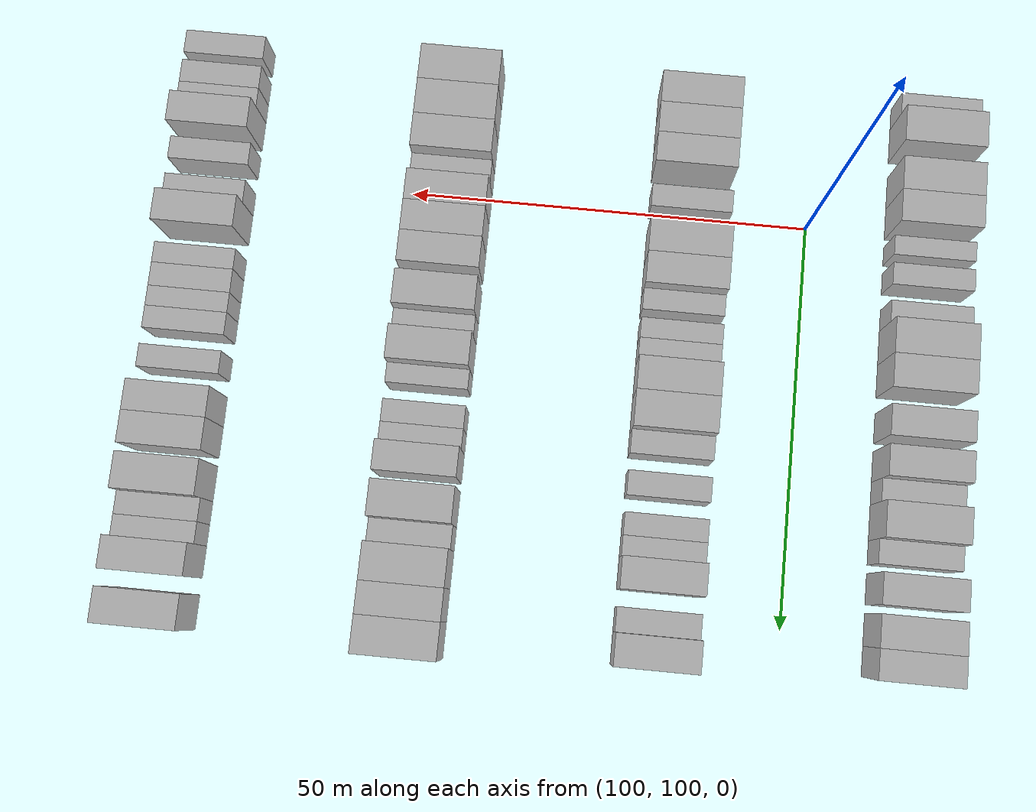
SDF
<sdf version="1.6">
 <world name="default">
  <model name="building_586">
   <static>1</static>
   <pose>85.0000 84.3068 0 0.000000 0.000000 0.000000</pose>
   <link name="link">
    <pose>0 0 3.00 0 0 0</pose>
    <collision name="collision"><geometry><box><size>10.0000 2.7401 6.0000</size></box></geometry></collision>
    <visual name="visual">
     <cast_shadows>0</cast_shadows>
     <geometry><box><size>10.0000 2.7401 6.0000</size></box></geometry>
     <material>
      <script>
       <uri>model://HANNAS_wall/materials/scripts</uri>
       <uri>model://HANNAS_wall/materials/textures</uri>
       <name>vrc/HANNAS_wall</name>
      </script>
     </material>
    </visual>
   </link>
  </model>
  <model name="building_587">
   <static>1</static>
   <pose>85.0000 87.9231 0 0.000000 0.000000 0.000000</pose>
   <link name="link">
    <pose>0 0 4.50 0 0 0</pose>
    <collision name="collision"><geometry><box><size>10.0000 4.4925 9.0000</size></box></geometry></collision>
    <visual name="visual">
     <cast_shadows>0</cast_shadows>
     <geometry><box><size>10.0000 4.4925 9.0000</size></box></geometry>
     <material>
      <script>
       <uri>model://HANNAS_wall/materials/scripts</uri>
       <uri>model://HANNAS_wall/materials/textures</uri>
       <name>vrc/HANNAS_wall</name>
      </script>
     </material>
    </visual>
   </link>
  </model>
  <model name="building_588">
   <static>1</static>
   <pose>85.0000 94.2561 0 0.000000 0.000000 0.000000</pose>
   <link name="link">
    <pose>0 0 4.50 0 0 0</pose>
    <collision name="collision"><geometry><box><size>10.0000 4.1736 9.0000</size></box></geometry></collision>
    <visual name="visual">
     <cast_shadows>0</cast_shadows>
     <geometry><box><size>10.0000 4.1736 9.0000</size></box></geometry>
     <material>
      <script>
       <uri>model://HANNAS_wall/materials/scripts</uri>
       <uri>model://HANNAS_wall/materials/textures</uri>
       <name>vrc/HANNAS_wall</name>
      </script>
     </material>
    </visual>
   </link>
  </model>
  <model name="building_589">
   <static>1</static>
   <pose>85.0000 98.3494 0 0.000000 0.000000 0.000000</pose>
   <link name="link">
    <pose>0 0 4.50 0 0 0</pose>
    <collision name="collision"><geometry><box><size>10.0000 4.0129 9.0000</size></box></geometry></collision>
    <visual name="visual">
     <cast_shadows>0</cast_shadows>
     <geometry><box><size>10.0000 4.0129 9.0000</size></box></geometry>
     <material>
      <script>
       <uri>model://HANNAS_wall/materials/scripts</uri>
       <uri>model://HANNAS_wall/materials/textures</uri>
       <name>vrc/HANNAS_wall</name>
      </script>
     </material>
    </visual>
   </link>
  </model>
  <model name="building_590">
   <static>1</static>
   <pose>85.0000 102.5687 0 0.000000 0.000000 0.000000</pose>
   <link name="link">
    <pose>0 0 3.00 0 0 0</pose>
    <collision name="collision"><geometry><box><size>10.0000 2.4257 6.0000</size></box></geometry></collision>
    <visual name="visual">
     <cast_shadows>0</cast_shadows>
     <geometry><box><size>10.0000 2.4257 6.0000</size></box></geometry>
     <material>
      <script>
       <uri>model://HANNAS_wall/materials/scripts</uri>
       <uri>model://HANNAS_wall/materials/textures</uri>
       <name>vrc/HANNAS_wall</name>
      </script>
     </material>
    </visual>
   </link>
  </model>
  <model name="building_591">
   <static>1</static>
   <pose>85.0000 106.1508 0 0.000000 0.000000 0.000000</pose>
   <link name="link">
    <pose>0 0 3.00 0 0 0</pose>
    <collision name="collision"><geometry><box><size>10.0000 2.7384 6.0000</size></box></geometry></collision>
    <visual name="visual">
     <cast_shadows>0</cast_shadows>
     <geometry><box><size>10.0000 2.7384 6.0000</size></box></geometry>
     <material>
      <script>
       <uri>model://HANNAS_wall/materials/scripts</uri>
       <uri>model://HANNAS_wall/materials/textures</uri>
       <name>vrc/HANNAS_wall</name>
      </script>
     </material>
    </visual>
   </link>
  </model>
  <model name="building_592">
   <static>1</static>
   <pose>85.0000 110.8745 0 0.000000 0.000000 0.000000</pose>
   <link name="link">
    <pose>0 0 3.00 0 0 0</pose>
    <collision name="collision"><geometry><box><size>10.0000 2.7091 6.0000</size></box></geometry></collision>
    <visual name="visual">
     <cast_shadows>0</cast_shadows>
     <geometry><box><size>10.0000 2.7091 6.0000</size></box></geometry>
     <material>
      <script>
       <uri>model://HANNAS_wall/materials/scripts</uri>
       <uri>model://HANNAS_wall/materials/textures</uri>
       <name>vrc/HANNAS_wall</name>
      </script>
     </material>
    </visual>
   </link>
  </model>
  <model name="building_593">
   <static>1</static>
   <pose>85.0000 114.3987 0 0.000000 0.000000 0.000000</pose>
   <link name="link">
    <pose>0 0 4.50 0 0 0</pose>
    <collision name="collision"><geometry><box><size>10.0000 4.3392 9.0000</size></box></geometry></collision>
    <visual name="visual">
     <cast_shadows>0</cast_shadows>
     <geometry><box><size>10.0000 4.3392 9.0000</size></box></geometry>
     <material>
      <script>
       <uri>model://HANNAS_wall/materials/scripts</uri>
       <uri>model://HANNAS_wall/materials/textures</uri>
       <name>vrc/HANNAS_wall</name>
      </script>
     </material>
    </visual>
   </link>
  </model>
  <model name="building_594">
   <static>1</static>
   <pose>85.0000 118.6286 0 0.000000 0.000000 0.000000</pose>
   <link name="link">
    <pose>0 0 4.50 0 0 0</pose>
    <collision name="collision"><geometry><box><size>10.0000 4.1207 9.0000</size></box></geometry></collision>
    <visual name="visual">
     <cast_shadows>0</cast_shadows>
     <geometry><box><size>10.0000 4.1207 9.0000</size></box></geometry>
     <material>
      <script>
       <uri>model://HANNAS_wall/materials/scripts</uri>
       <uri>model://HANNAS_wall/materials/textures</uri>
       <name>vrc/HANNAS_wall</name>
      </script>
     </material>
    </visual>
   </link>
  </model>
  <model name="building_595">
   <static>1</static>
   <pose>85.0000 124.5552 0 0.000000 0.000000 0.000000</pose>
   <link name="link">
    <pose>0 0 4.50 0 0 0</pose>
    <collision name="collision"><geometry><box><size>10.0000 3.7326 9.0000</size></box></geometry></collision>
    <visual name="visual">
     <cast_shadows>0</cast_shadows>
     <geometry><box><size>10.0000 3.7326 9.0000</size></box></geometry>
     <material>
      <script>
       <uri>model://HANNAS_wall/materials/scripts</uri>
       <uri>model://HANNAS_wall/materials/textures</uri>
       <name>vrc/HANNAS_wall</name>
      </script>
     </material>
    </visual>
   </link>
  </model>
  <model name="building_596">
   <static>1</static>
   <pose>85.0000 129.3029 0 0.000000 0.000000 0.000000</pose>
   <link name="link">
    <pose>0 0 4.50 0 0 0</pose>
    <collision name="collision"><geometry><box><size>10.0000 3.7627 9.0000</size></box></geometry></collision>
    <visual name="visual">
     <cast_shadows>0</cast_shadows>
     <geometry><box><size>10.0000 3.7627 9.0000</size></box></geometry>
     <material>
      <script>
       <uri>model://HANNAS_wall/materials/scripts</uri>
       <uri>model://HANNAS_wall/materials/textures</uri>
       <name>vrc/HANNAS_wall</name>
      </script>
     </material>
    </visual>
   </link>
  </model>
  <model name="building_597">
   <static>1</static>
   <pose>85.0000 132.5832 0 0.000000 0.000000 0.000000</pose>
   <link name="link">
    <pose>0 0 3.00 0 0 0</pose>
    <collision name="collision"><geometry><box><size>10.0000 2.7979 6.0000</size></box></geometry></collision>
    <visual name="visual">
     <cast_shadows>0</cast_shadows>
     <geometry><box><size>10.0000 2.7979 6.0000</size></box></geometry>
     <material>
      <script>
       <uri>model://HANNAS_wall/materials/scripts</uri>
       <uri>model://HANNAS_wall/materials/textures</uri>
       <name>vrc/HANNAS_wall</name>
      </script>
     </material>
    </visual>
   </link>
  </model>
  <model name="building_598">
   <static>1</static>
   <pose>85.0000 136.1580 0 0.000000 0.000000 0.000000</pose>
   <link name="link">
    <pose>0 0 4.50 0 0 0</pose>
    <collision name="collision"><geometry><box><size>10.0000 4.3518 9.0000</size></box></geometry></collision>
    <visual name="visual">
     <cast_shadows>0</cast_shadows>
     <geometry><box><size>10.0000 4.3518 9.0000</size></box></geometry>
     <material>
      <script>
       <uri>model://HANNAS_wall/materials/scripts</uri>
       <uri>model://HANNAS_wall/materials/textures</uri>
       <name>vrc/HANNAS_wall</name>
      </script>
     </material>
    </visual>
   </link>
  </model>
  <model name="building_599">
   <static>1</static>
   <pose>85.0000 139.8066 0 0.000000 0.000000 0.000000</pose>
   <link name="link">
    <pose>0 0 3.00 0 0 0</pose>
    <collision name="collision"><geometry><box><size>10.0000 2.9453 6.0000</size></box></geometry></collision>
    <visual name="visual">
     <cast_shadows>0</cast_shadows>
     <geometry><box><size>10.0000 2.9453 6.0000</size></box></geometry>
     <material>
      <script>
       <uri>model://HANNAS_wall/materials/scripts</uri>
       <uri>model://HANNAS_wall/materials/textures</uri>
       <name>vrc/HANNAS_wall</name>
      </script>
     </material>
    </visual>
   </link>
  </model>
  <model name="building_600">
   <static>1</static>
   <pose>85.0000 144.1525 0 0.000000 0.000000 0.000000</pose>
   <link name="link">
    <pose>0 0 4.50 0 0 0</pose>
    <collision name="collision"><geometry><box><size>10.0000 3.7465 9.0000</size></box></geometry></collision>
    <visual name="visual">
     <cast_shadows>0</cast_shadows>
     <geometry><box><size>10.0000 3.7465 9.0000</size></box></geometry>
     <material>
      <script>
       <uri>model://HANNAS_wall/materials/scripts</uri>
       <uri>model://HANNAS_wall/materials/textures</uri>
       <name>vrc/HANNAS_wall</name>
      </script>
     </material>
    </visual>
   </link>
  </model>
  <model name="building_601">
   <static>1</static>
   <pose>85.0000 148.9699 0 0.000000 0.000000 0.000000</pose>
   <link name="link">
    <pose>0 0 4.50 0 0 0</pose>
    <collision name="collision"><geometry><box><size>10.0000 3.8882 9.0000</size></box></geometry></collision>
    <visual name="visual">
     <cast_shadows>0</cast_shadows>
     <geometry><box><size>10.0000 3.8882 9.0000</size></box></geometry>
     <material>
      <script>
       <uri>model://HANNAS_wall/materials/scripts</uri>
       <uri>model://HANNAS_wall/materials/textures</uri>
       <name>vrc/HANNAS_wall</name>
      </script>
     </material>
    </visual>
   </link>
  </model>
  <model name="building_602">
   <static>1</static>
   <pose>85.0000 152.7186 0 0.000000 0.000000 0.000000</pose>
   <link name="link">
    <pose>0 0 4.50 0 0 0</pose>
    <collision name="collision"><geometry><box><size>10.0000 3.6094 9.0000</size></box></geometry></collision>
    <visual name="visual">
     <cast_shadows>0</cast_shadows>
     <geometry><box><size>10.0000 3.6094 9.0000</size></box></geometry>
     <material>
      <script>
       <uri>model://HANNAS_wall/materials/scripts</uri>
       <uri>model://HANNAS_wall/materials/textures</uri>
       <name>vrc/HANNAS_wall</name>
      </script>
     </material>
    </visual>
   </link>
  </model>
  <model name="building_821">
   <static>1</static>
   <pose>115.0000 86.0064 0 0.000000 0.000000 0.000000</pose>
   <link name="link">
    <pose>0 0 4.50 0 0 0</pose>
    <collision name="collision"><geometry><box><size>10.0000 4.0059 9.0000</size></box></geometry></collision>
    <visual name="visual">
     <cast_shadows>0</cast_shadows>
     <geometry><box><size>10.0000 4.0059 9.0000</size></box></geometry>
     <material>
      <script>
       <uri>model://HANNAS_wall/materials/scripts</uri>
       <uri>model://HANNAS_wall/materials/textures</uri>
       <name>vrc/HANNAS_wall</name>
      </script>
     </material>
    </visual>
   </link>
  </model>
  <model name="building_822">
   <static>1</static>
   <pose>115.0000 89.9479 0 0.000000 0.000000 0.000000</pose>
   <link name="link">
    <pose>0 0 4.50 0 0 0</pose>
    <collision name="collision"><geometry><box><size>10.0000 3.8771 9.0000</size></box></geometry></collision>
    <visual name="visual">
     <cast_shadows>0</cast_shadows>
     <geometry><box><size>10.0000 3.8771 9.0000</size></box></geometry>
     <material>
      <script>
       <uri>model://HANNAS_wall/materials/scripts</uri>
       <uri>model://HANNAS_wall/materials/textures</uri>
       <name>vrc/HANNAS_wall</name>
      </script>
     </material>
    </visual>
   </link>
  </model>
  <model name="building_823">
   <static>1</static>
   <pose>115.0000 93.7363 0 0.000000 0.000000 0.000000</pose>
   <link name="link">
    <pose>0 0 4.50 0 0 0</pose>
    <collision name="collision"><geometry><box><size>10.0000 3.6998 9.0000</size></box></geometry></collision>
    <visual name="visual">
     <cast_shadows>0</cast_shadows>
     <geometry><box><size>10.0000 3.6998 9.0000</size></box></geometry>
     <material>
      <script>
       <uri>model://HANNAS_wall/materials/scripts</uri>
       <uri>model://HANNAS_wall/materials/textures</uri>
       <name>vrc/HANNAS_wall</name>
      </script>
     </material>
    </visual>
   </link>
  </model>
  <model name="building_824">
   <static>1</static>
   <pose>115.0000 99.0015 0 0.000000 0.000000 0.000000</pose>
   <link name="link">
    <pose>0 0 3.00 0 0 0</pose>
    <collision name="collision"><geometry><box><size>10.0000 2.8305 6.0000</size></box></geometry></collision>
    <visual name="visual">
     <cast_shadows>0</cast_shadows>
     <geometry><box><size>10.0000 2.8305 6.0000</size></box></geometry>
     <material>
      <script>
       <uri>model://HANNAS_wall/materials/scripts</uri>
       <uri>model://HANNAS_wall/materials/textures</uri>
       <name>vrc/HANNAS_wall</name>
      </script>
     </material>
    </visual>
   </link>
  </model>
  <model name="building_825">
   <static>1</static>
   <pose>115.0000 104.6658 0 0.000000 0.000000 0.000000</pose>
   <link name="link">
    <pose>0 0 4.50 0 0 0</pose>
    <collision name="collision"><geometry><box><size>10.0000 4.4981 9.0000</size></box></geometry></collision>
    <visual name="visual">
     <cast_shadows>0</cast_shadows>
     <geometry><box><size>10.0000 4.4981 9.0000</size></box></geometry>
     <material>
      <script>
       <uri>model://HANNAS_wall/materials/scripts</uri>
       <uri>model://HANNAS_wall/materials/textures</uri>
       <name>vrc/HANNAS_wall</name>
      </script>
     </material>
    </visual>
   </link>
  </model>
  <model name="building_826">
   <static>1</static>
   <pose>115.0000 108.8684 0 0.000000 0.000000 0.000000</pose>
   <link name="link">
    <pose>0 0 4.50 0 0 0</pose>
    <collision name="collision"><geometry><box><size>10.0000 3.9072 9.0000</size></box></geometry></collision>
    <visual name="visual">
     <cast_shadows>0</cast_shadows>
     <geometry><box><size>10.0000 3.9072 9.0000</size></box></geometry>
     <material>
      <script>
       <uri>model://HANNAS_wall/materials/scripts</uri>
       <uri>model://HANNAS_wall/materials/textures</uri>
       <name>vrc/HANNAS_wall</name>
      </script>
     </material>
    </visual>
   </link>
  </model>
  <model name="building_827">
   <static>1</static>
   <pose>115.0000 112.1469 0 0.000000 0.000000 0.000000</pose>
   <link name="link">
    <pose>0 0 3.00 0 0 0</pose>
    <collision name="collision"><geometry><box><size>10.0000 2.6499 6.0000</size></box></geometry></collision>
    <visual name="visual">
     <cast_shadows>0</cast_shadows>
     <geometry><box><size>10.0000 2.6499 6.0000</size></box></geometry>
     <material>
      <script>
       <uri>model://HANNAS_wall/materials/scripts</uri>
       <uri>model://HANNAS_wall/materials/textures</uri>
       <name>vrc/HANNAS_wall</name>
      </script>
     </material>
    </visual>
   </link>
  </model>
  <model name="building_828">
   <static>1</static>
   <pose>115.0000 115.7206 0 0.000000 0.000000 0.000000</pose>
   <link name="link">
    <pose>0 0 3.00 0 0 0</pose>
    <collision name="collision"><geometry><box><size>10.0000 2.4973 6.0000</size></box></geometry></collision>
    <visual name="visual">
     <cast_shadows>0</cast_shadows>
     <geometry><box><size>10.0000 2.4973 6.0000</size></box></geometry>
     <material>
      <script>
       <uri>model://HANNAS_wall/materials/scripts</uri>
       <uri>model://HANNAS_wall/materials/textures</uri>
       <name>vrc/HANNAS_wall</name>
      </script>
     </material>
    </visual>
   </link>
  </model>
  <model name="building_829">
   <static>1</static>
   <pose>115.0000 118.3244 0 0.000000 0.000000 0.000000</pose>
   <link name="link">
    <pose>0 0 3.00 0 0 0</pose>
    <collision name="collision"><geometry><box><size>10.0000 2.7103 6.0000</size></box></geometry></collision>
    <visual name="visual">
     <cast_shadows>0</cast_shadows>
     <geometry><box><size>10.0000 2.7103 6.0000</size></box></geometry>
     <material>
      <script>
       <uri>model://HANNAS_wall/materials/scripts</uri>
       <uri>model://HANNAS_wall/materials/textures</uri>
       <name>vrc/HANNAS_wall</name>
      </script>
     </material>
    </visual>
   </link>
  </model>
  <model name="building_830">
   <static>1</static>
   <pose>115.0000 121.7074 0 0.000000 0.000000 0.000000</pose>
   <link name="link">
    <pose>0 0 4.50 0 0 0</pose>
    <collision name="collision"><geometry><box><size>10.0000 4.0557 9.0000</size></box></geometry></collision>
    <visual name="visual">
     <cast_shadows>0</cast_shadows>
     <geometry><box><size>10.0000 4.0557 9.0000</size></box></geometry>
     <material>
      <script>
       <uri>model://HANNAS_wall/materials/scripts</uri>
       <uri>model://HANNAS_wall/materials/textures</uri>
       <name>vrc/HANNAS_wall</name>
      </script>
     </material>
    </visual>
   </link>
  </model>
  <model name="building_831">
   <static>1</static>
   <pose>115.0000 125.9394 0 0.000000 0.000000 0.000000</pose>
   <link name="link">
    <pose>0 0 4.50 0 0 0</pose>
    <collision name="collision"><geometry><box><size>10.0000 4.4082 9.0000</size></box></geometry></collision>
    <visual name="visual">
     <cast_shadows>0</cast_shadows>
     <geometry><box><size>10.0000 4.4082 9.0000</size></box></geometry>
     <material>
      <script>
       <uri>model://HANNAS_wall/materials/scripts</uri>
       <uri>model://HANNAS_wall/materials/textures</uri>
       <name>vrc/HANNAS_wall</name>
      </script>
     </material>
    </visual>
   </link>
  </model>
  <model name="building_832">
   <static>1</static>
   <pose>115.0000 129.5992 0 0.000000 0.000000 0.000000</pose>
   <link name="link">
    <pose>0 0 3.00 0 0 0</pose>
    <collision name="collision"><geometry><box><size>10.0000 2.9114 6.0000</size></box></geometry></collision>
    <visual name="visual">
     <cast_shadows>0</cast_shadows>
     <geometry><box><size>10.0000 2.9114 6.0000</size></box></geometry>
     <material>
      <script>
       <uri>model://HANNAS_wall/materials/scripts</uri>
       <uri>model://HANNAS_wall/materials/textures</uri>
       <name>vrc/HANNAS_wall</name>
      </script>
     </material>
    </visual>
   </link>
  </model>
  <model name="building_833">
   <static>1</static>
   <pose>115.0000 134.5402 0 0.000000 0.000000 0.000000</pose>
   <link name="link">
    <pose>0 0 3.00 0 0 0</pose>
    <collision name="collision"><geometry><box><size>10.0000 2.9706 6.0000</size></box></geometry></collision>
    <visual name="visual">
     <cast_shadows>0</cast_shadows>
     <geometry><box><size>10.0000 2.9706 6.0000</size></box></geometry>
     <material>
      <script>
       <uri>model://HANNAS_wall/materials/scripts</uri>
       <uri>model://HANNAS_wall/materials/textures</uri>
       <name>vrc/HANNAS_wall</name>
      </script>
     </material>
    </visual>
   </link>
  </model>
  <model name="building_834">
   <static>1</static>
   <pose>115.0000 139.3898 0 0.000000 0.000000 0.000000</pose>
   <link name="link">
    <pose>0 0 3.00 0 0 0</pose>
    <collision name="collision"><geometry><box><size>10.0000 2.7285 6.0000</size></box></geometry></collision>
    <visual name="visual">
     <cast_shadows>0</cast_shadows>
     <geometry><box><size>10.0000 2.7285 6.0000</size></box></geometry>
     <material>
      <script>
       <uri>model://HANNAS_wall/materials/scripts</uri>
       <uri>model://HANNAS_wall/materials/textures</uri>
       <name>vrc/HANNAS_wall</name>
      </script>
     </material>
    </visual>
   </link>
  </model>
  <model name="building_835">
   <static>1</static>
   <pose>115.0000 142.0013 0 0.000000 0.000000 0.000000</pose>
   <link name="link">
    <pose>0 0 3.00 0 0 0</pose>
    <collision name="collision"><geometry><box><size>10.0000 2.4946 6.0000</size></box></geometry></collision>
    <visual name="visual">
     <cast_shadows>0</cast_shadows>
     <geometry><box><size>10.0000 2.4946 6.0000</size></box></geometry>
     <material>
      <script>
       <uri>model://HANNAS_wall/materials/scripts</uri>
       <uri>model://HANNAS_wall/materials/textures</uri>
       <name>vrc/HANNAS_wall</name>
      </script>
     </material>
    </visual>
   </link>
  </model>
  <model name="building_836">
   <static>1</static>
   <pose>115.0000 145.1570 0 0.000000 0.000000 0.000000</pose>
   <link name="link">
    <pose>0 0 4.50 0 0 0</pose>
    <collision name="collision"><geometry><box><size>10.0000 3.8167 9.0000</size></box></geometry></collision>
    <visual name="visual">
     <cast_shadows>0</cast_shadows>
     <geometry><box><size>10.0000 3.8167 9.0000</size></box></geometry>
     <material>
      <script>
       <uri>model://HANNAS_wall/materials/scripts</uri>
       <uri>model://HANNAS_wall/materials/textures</uri>
       <name>vrc/HANNAS_wall</name>
      </script>
     </material>
    </visual>
   </link>
  </model>
  <model name="building_837">
   <static>1</static>
   <pose>115.0000 150.5310 0 0.000000 0.000000 0.000000</pose>
   <link name="link">
    <pose>0 0 3.00 0 0 0</pose>
    <collision name="collision"><geometry><box><size>10.0000 2.9313 6.0000</size></box></geometry></collision>
    <visual name="visual">
     <cast_shadows>0</cast_shadows>
     <geometry><box><size>10.0000 2.9313 6.0000</size></box></geometry>
     <material>
      <script>
       <uri>model://HANNAS_wall/materials/scripts</uri>
       <uri>model://HANNAS_wall/materials/textures</uri>
       <name>vrc/HANNAS_wall</name>
      </script>
     </material>
    </visual>
   </link>
  </model>
  <model name="building_838">
   <static>1</static>
   <pose>115.0000 153.9127 0 0.000000 0.000000 0.000000</pose>
   <link name="link">
    <pose>0 0 4.50 0 0 0</pose>
    <collision name="collision"><geometry><box><size>10.0000 3.8321 9.0000</size></box></geometry></collision>
    <visual name="visual">
     <cast_shadows>0</cast_shadows>
     <geometry><box><size>10.0000 3.8321 9.0000</size></box></geometry>
     <material>
      <script>
       <uri>model://HANNAS_wall/materials/scripts</uri>
       <uri>model://HANNAS_wall/materials/textures</uri>
       <name>vrc/HANNAS_wall</name>
      </script>
     </material>
    </visual>
   </link>
  </model>
  <model name="building_1054">
   <static>1</static>
   <pose>145.0000 85.5913 0 0.000000 0.000000 0.000000</pose>
   <link name="link">
    <pose>0 0 4.50 0 0 0</pose>
    <collision name="collision"><geometry><box><size>10.0000 4.4751 9.0000</size></box></geometry></collision>
    <visual name="visual">
     <cast_shadows>0</cast_shadows>
     <geometry><box><size>10.0000 4.4751 9.0000</size></box></geometry>
     <material>
      <script>
       <uri>model://HANNAS_wall/materials/scripts</uri>
       <uri>model://HANNAS_wall/materials/textures</uri>
       <name>vrc/HANNAS_wall</name>
      </script>
     </material>
    </visual>
   </link>
  </model>
  <model name="building_1055">
   <static>1</static>
   <pose>145.0000 90.0690 0 0.000000 0.000000 0.000000</pose>
   <link name="link">
    <pose>0 0 4.50 0 0 0</pose>
    <collision name="collision"><geometry><box><size>10.0000 4.4804 9.0000</size></box></geometry></collision>
    <visual name="visual">
     <cast_shadows>0</cast_shadows>
     <geometry><box><size>10.0000 4.4804 9.0000</size></box></geometry>
     <material>
      <script>
       <uri>model://HANNAS_wall/materials/scripts</uri>
       <uri>model://HANNAS_wall/materials/textures</uri>
       <name>vrc/HANNAS_wall</name>
      </script>
     </material>
    </visual>
   </link>
  </model>
  <model name="building_1056">
   <static>1</static>
   <pose>145.0000 94.3961 0 0.000000 0.000000 0.000000</pose>
   <link name="link">
    <pose>0 0 4.50 0 0 0</pose>
    <collision name="collision"><geometry><box><size>10.0000 4.1738 9.0000</size></box></geometry></collision>
    <visual name="visual">
     <cast_shadows>0</cast_shadows>
     <geometry><box><size>10.0000 4.1738 9.0000</size></box></geometry>
     <material>
      <script>
       <uri>model://HANNAS_wall/materials/scripts</uri>
       <uri>model://HANNAS_wall/materials/textures</uri>
       <name>vrc/HANNAS_wall</name>
      </script>
     </material>
    </visual>
   </link>
  </model>
  <model name="building_1057">
   <static>1</static>
   <pose>145.0000 97.9484 0 0.000000 0.000000 0.000000</pose>
   <link name="link">
    <pose>0 0 3.00 0 0 0</pose>
    <collision name="collision"><geometry><box><size>10.0000 2.9307 6.0000</size></box></geometry></collision>
    <visual name="visual">
     <cast_shadows>0</cast_shadows>
     <geometry><box><size>10.0000 2.9307 6.0000</size></box></geometry>
     <material>
      <script>
       <uri>model://HANNAS_wall/materials/scripts</uri>
       <uri>model://HANNAS_wall/materials/textures</uri>
       <name>vrc/HANNAS_wall</name>
      </script>
     </material>
    </visual>
   </link>
  </model>
  <model name="building_1058">
   <static>1</static>
   <pose>145.0000 101.3515 0 0.000000 0.000000 0.000000</pose>
   <link name="link">
    <pose>0 0 4.50 0 0 0</pose>
    <collision name="collision"><geometry><box><size>10.0000 3.8756 9.0000</size></box></geometry></collision>
    <visual name="visual">
     <cast_shadows>0</cast_shadows>
     <geometry><box><size>10.0000 3.8756 9.0000</size></box></geometry>
     <material>
      <script>
       <uri>model://HANNAS_wall/materials/scripts</uri>
       <uri>model://HANNAS_wall/materials/textures</uri>
       <name>vrc/HANNAS_wall</name>
      </script>
     </material>
    </visual>
   </link>
  </model>
  <model name="building_1059">
   <static>1</static>
   <pose>145.0000 105.2053 0 0.000000 0.000000 0.000000</pose>
   <link name="link">
    <pose>0 0 4.50 0 0 0</pose>
    <collision name="collision"><geometry><box><size>10.0000 3.8321 9.0000</size></box></geometry></collision>
    <visual name="visual">
     <cast_shadows>0</cast_shadows>
     <geometry><box><size>10.0000 3.8321 9.0000</size></box></geometry>
     <material>
      <script>
       <uri>model://HANNAS_wall/materials/scripts</uri>
       <uri>model://HANNAS_wall/materials/textures</uri>
       <name>vrc/HANNAS_wall</name>
      </script>
     </material>
    </visual>
   </link>
  </model>
  <model name="building_1060">
   <static>1</static>
   <pose>145.0000 109.0336 0 0.000000 0.000000 0.000000</pose>
   <link name="link">
    <pose>0 0 4.50 0 0 0</pose>
    <collision name="collision"><geometry><box><size>10.0000 3.8245 9.0000</size></box></geometry></collision>
    <visual name="visual">
     <cast_shadows>0</cast_shadows>
     <geometry><box><size>10.0000 3.8245 9.0000</size></box></geometry>
     <material>
      <script>
       <uri>model://HANNAS_wall/materials/scripts</uri>
       <uri>model://HANNAS_wall/materials/textures</uri>
       <name>vrc/HANNAS_wall</name>
      </script>
     </material>
    </visual>
   </link>
  </model>
  <model name="building_1061">
   <static>1</static>
   <pose>145.0000 114.0666 0 0.000000 0.000000 0.000000</pose>
   <link name="link">
    <pose>0 0 4.50 0 0 0</pose>
    <collision name="collision"><geometry><box><size>10.0000 4.2415 9.0000</size></box></geometry></collision>
    <visual name="visual">
     <cast_shadows>0</cast_shadows>
     <geometry><box><size>10.0000 4.2415 9.0000</size></box></geometry>
     <material>
      <script>
       <uri>model://HANNAS_wall/materials/scripts</uri>
       <uri>model://HANNAS_wall/materials/textures</uri>
       <name>vrc/HANNAS_wall</name>
      </script>
     </material>
    </visual>
   </link>
  </model>
  <model name="building_1062">
   <static>1</static>
   <pose>145.0000 117.4738 0 0.000000 0.000000 0.000000</pose>
   <link name="link">
    <pose>0 0 3.00 0 0 0</pose>
    <collision name="collision"><geometry><box><size>10.0000 2.5729 6.0000</size></box></geometry></collision>
    <visual name="visual">
     <cast_shadows>0</cast_shadows>
     <geometry><box><size>10.0000 2.5729 6.0000</size></box></geometry>
     <material>
      <script>
       <uri>model://HANNAS_wall/materials/scripts</uri>
       <uri>model://HANNAS_wall/materials/textures</uri>
       <name>vrc/HANNAS_wall</name>
      </script>
     </material>
    </visual>
   </link>
  </model>
  <model name="building_1063">
   <static>1</static>
   <pose>145.0000 120.8194 0 0.000000 0.000000 0.000000</pose>
   <link name="link">
    <pose>0 0 4.50 0 0 0</pose>
    <collision name="collision"><geometry><box><size>10.0000 4.1184 9.0000</size></box></geometry></collision>
    <visual name="visual">
     <cast_shadows>0</cast_shadows>
     <geometry><box><size>10.0000 4.1184 9.0000</size></box></geometry>
     <material>
      <script>
       <uri>model://HANNAS_wall/materials/scripts</uri>
       <uri>model://HANNAS_wall/materials/textures</uri>
       <name>vrc/HANNAS_wall</name>
      </script>
     </material>
    </visual>
   </link>
  </model>
  <model name="building_1064">
   <static>1</static>
   <pose>145.0000 124.0954 0 0.000000 0.000000 0.000000</pose>
   <link name="link">
    <pose>0 0 3.00 0 0 0</pose>
    <collision name="collision"><geometry><box><size>10.0000 2.4336 6.0000</size></box></geometry></collision>
    <visual name="visual">
     <cast_shadows>0</cast_shadows>
     <geometry><box><size>10.0000 2.4336 6.0000</size></box></geometry>
     <material>
      <script>
       <uri>model://HANNAS_wall/materials/scripts</uri>
       <uri>model://HANNAS_wall/materials/textures</uri>
       <name>vrc/HANNAS_wall</name>
      </script>
     </material>
    </visual>
   </link>
  </model>
  <model name="building_1065">
   <static>1</static>
   <pose>145.0000 128.6972 0 0.000000 0.000000 0.000000</pose>
   <link name="link">
    <pose>0 0 3.00 0 0 0</pose>
    <collision name="collision"><geometry><box><size>10.0000 2.7700 6.0000</size></box></geometry></collision>
    <visual name="visual">
     <cast_shadows>0</cast_shadows>
     <geometry><box><size>10.0000 2.7700 6.0000</size></box></geometry>
     <material>
      <script>
       <uri>model://HANNAS_wall/materials/scripts</uri>
       <uri>model://HANNAS_wall/materials/textures</uri>
       <name>vrc/HANNAS_wall</name>
      </script>
     </material>
    </visual>
   </link>
  </model>
  <model name="building_1066">
   <static>1</static>
   <pose>145.0000 131.3112 0 0.000000 0.000000 0.000000</pose>
   <link name="link">
    <pose>0 0 3.00 0 0 0</pose>
    <collision name="collision"><geometry><box><size>10.0000 2.4581 6.0000</size></box></geometry></collision>
    <visual name="visual">
     <cast_shadows>0</cast_shadows>
     <geometry><box><size>10.0000 2.4581 6.0000</size></box></geometry>
     <material>
      <script>
       <uri>model://HANNAS_wall/materials/scripts</uri>
       <uri>model://HANNAS_wall/materials/textures</uri>
       <name>vrc/HANNAS_wall</name>
      </script>
     </material>
    </visual>
   </link>
  </model>
  <model name="building_1067">
   <static>1</static>
   <pose>145.0000 134.3520 0 0.000000 0.000000 0.000000</pose>
   <link name="link">
    <pose>0 0 4.50 0 0 0</pose>
    <collision name="collision"><geometry><box><size>10.0000 3.6235 9.0000</size></box></geometry></collision>
    <visual name="visual">
     <cast_shadows>0</cast_shadows>
     <geometry><box><size>10.0000 3.6235 9.0000</size></box></geometry>
     <material>
      <script>
       <uri>model://HANNAS_wall/materials/scripts</uri>
       <uri>model://HANNAS_wall/materials/textures</uri>
       <name>vrc/HANNAS_wall</name>
      </script>
     </material>
    </visual>
   </link>
  </model>
  <model name="building_1068">
   <static>1</static>
   <pose>145.0000 139.3469 0 0.000000 0.000000 0.000000</pose>
   <link name="link">
    <pose>0 0 4.50 0 0 0</pose>
    <collision name="collision"><geometry><box><size>10.0000 4.3661 9.0000</size></box></geometry></collision>
    <visual name="visual">
     <cast_shadows>0</cast_shadows>
     <geometry><box><size>10.0000 4.3661 9.0000</size></box></geometry>
     <material>
      <script>
       <uri>model://HANNAS_wall/materials/scripts</uri>
       <uri>model://HANNAS_wall/materials/textures</uri>
       <name>vrc/HANNAS_wall</name>
      </script>
     </material>
    </visual>
   </link>
  </model>
  <model name="building_1069">
   <static>1</static>
   <pose>145.0000 142.9642 0 0.000000 0.000000 0.000000</pose>
   <link name="link">
    <pose>0 0 3.00 0 0 0</pose>
    <collision name="collision"><geometry><box><size>10.0000 2.8686 6.0000</size></box></geometry></collision>
    <visual name="visual">
     <cast_shadows>0</cast_shadows>
     <geometry><box><size>10.0000 2.8686 6.0000</size></box></geometry>
     <material>
      <script>
       <uri>model://HANNAS_wall/materials/scripts</uri>
       <uri>model://HANNAS_wall/materials/textures</uri>
       <name>vrc/HANNAS_wall</name>
      </script>
     </material>
    </visual>
   </link>
  </model>
  <model name="building_1070">
   <static>1</static>
   <pose>145.0000 146.6483 0 0.000000 0.000000 0.000000</pose>
   <link name="link">
    <pose>0 0 4.50 0 0 0</pose>
    <collision name="collision"><geometry><box><size>10.0000 4.4995 9.0000</size></box></geometry></collision>
    <visual name="visual">
     <cast_shadows>0</cast_shadows>
     <geometry><box><size>10.0000 4.4995 9.0000</size></box></geometry>
     <material>
      <script>
       <uri>model://HANNAS_wall/materials/scripts</uri>
       <uri>model://HANNAS_wall/materials/textures</uri>
       <name>vrc/HANNAS_wall</name>
      </script>
     </material>
    </visual>
   </link>
  </model>
  <model name="building_1071">
   <static>1</static>
   <pose>145.0000 150.8282 0 0.000000 0.000000 0.000000</pose>
   <link name="link">
    <pose>0 0 4.50 0 0 0</pose>
    <collision name="collision"><geometry><box><size>10.0000 3.8603 9.0000</size></box></geometry></collision>
    <visual name="visual">
     <cast_shadows>0</cast_shadows>
     <geometry><box><size>10.0000 3.8603 9.0000</size></box></geometry>
     <material>
      <script>
       <uri>model://HANNAS_wall/materials/scripts</uri>
       <uri>model://HANNAS_wall/materials/textures</uri>
       <name>vrc/HANNAS_wall</name>
      </script>
     </material>
    </visual>
   </link>
  </model>
  <model name="building_1072">
   <static>1</static>
   <pose>145.0000 154.9855 0 0.000000 0.000000 0.000000</pose>
   <link name="link">
    <pose>0 0 4.50 0 0 0</pose>
    <collision name="collision"><geometry><box><size>10.0000 4.4544 9.0000</size></box></geometry></collision>
    <visual name="visual">
     <cast_shadows>0</cast_shadows>
     <geometry><box><size>10.0000 4.4544 9.0000</size></box></geometry>
     <material>
      <script>
       <uri>model://HANNAS_wall/materials/scripts</uri>
       <uri>model://HANNAS_wall/materials/textures</uri>
       <name>vrc/HANNAS_wall</name>
      </script>
     </material>
    </visual>
   </link>
  </model>
  <model name="building_1281">
   <static>1</static>
   <pose>175.0000 84.5603 0 0.000000 0.000000 0.000000</pose>
   <link name="link">
    <pose>0 0 3.00 0 0 0</pose>
    <collision name="collision"><geometry><box><size>10.0000 2.9276 6.0000</size></box></geometry></collision>
    <visual name="visual">
     <cast_shadows>0</cast_shadows>
     <geometry><box><size>10.0000 2.9276 6.0000</size></box></geometry>
     <material>
      <script>
       <uri>model://HANNAS_wall/materials/scripts</uri>
       <uri>model://HANNAS_wall/materials/textures</uri>
       <name>vrc/HANNAS_wall</name>
      </script>
     </material>
    </visual>
   </link>
  </model>
  <model name="building_1282">
   <static>1</static>
   <pose>175.0000 88.4696 0 0.000000 0.000000 0.000000</pose>
   <link name="link">
    <pose>0 0 3.00 0 0 0</pose>
    <collision name="collision"><geometry><box><size>10.0000 2.8910 6.0000</size></box></geometry></collision>
    <visual name="visual">
     <cast_shadows>0</cast_shadows>
     <geometry><box><size>10.0000 2.8910 6.0000</size></box></geometry>
     <material>
      <script>
       <uri>model://HANNAS_wall/materials/scripts</uri>
       <uri>model://HANNAS_wall/materials/textures</uri>
       <name>vrc/HANNAS_wall</name>
      </script>
     </material>
    </visual>
   </link>
  </model>
  <model name="building_1283">
   <static>1</static>
   <pose>175.0000 91.1175 0 0.000000 0.000000 0.000000</pose>
   <link name="link">
    <pose>0 0 3.00 0 0 0</pose>
    <collision name="collision"><geometry><box><size>10.0000 2.4047 6.0000</size></box></geometry></collision>
    <visual name="visual">
     <cast_shadows>0</cast_shadows>
     <geometry><box><size>10.0000 2.4047 6.0000</size></box></geometry>
     <material>
      <script>
       <uri>model://HANNAS_wall/materials/scripts</uri>
       <uri>model://HANNAS_wall/materials/textures</uri>
       <name>vrc/HANNAS_wall</name>
      </script>
     </material>
    </visual>
   </link>
  </model>
  <model name="building_1284">
   <static>1</static>
   <pose>175.0000 94.2225 0 0.000000 0.000000 0.000000</pose>
   <link name="link">
    <pose>0 0 4.50 0 0 0</pose>
    <collision name="collision"><geometry><box><size>10.0000 3.8052 9.0000</size></box></geometry></collision>
    <visual name="visual">
     <cast_shadows>0</cast_shadows>
     <geometry><box><size>10.0000 3.8052 9.0000</size></box></geometry>
     <material>
      <script>
       <uri>model://HANNAS_wall/materials/scripts</uri>
       <uri>model://HANNAS_wall/materials/textures</uri>
       <name>vrc/HANNAS_wall</name>
      </script>
     </material>
    </visual>
   </link>
  </model>
  <model name="building_1285">
   <static>1</static>
   <pose>175.0000 98.5291 0 0.000000 0.000000 0.000000</pose>
   <link name="link">
    <pose>0 0 3.00 0 0 0</pose>
    <collision name="collision"><geometry><box><size>10.0000 2.8080 6.0000</size></box></geometry></collision>
    <visual name="visual">
     <cast_shadows>0</cast_shadows>
     <geometry><box><size>10.0000 2.8080 6.0000</size></box></geometry>
     <material>
      <script>
       <uri>model://HANNAS_wall/materials/scripts</uri>
       <uri>model://HANNAS_wall/materials/textures</uri>
       <name>vrc/HANNAS_wall</name>
      </script>
     </material>
    </visual>
   </link>
  </model>
  <model name="building_1286">
   <static>1</static>
   <pose>175.0000 103.3636 0 0.000000 0.000000 0.000000</pose>
   <link name="link">
    <pose>0 0 3.00 0 0 0</pose>
    <collision name="collision"><geometry><box><size>10.0000 2.8611 6.0000</size></box></geometry></collision>
    <visual name="visual">
     <cast_shadows>0</cast_shadows>
     <geometry><box><size>10.0000 2.8611 6.0000</size></box></geometry>
     <material>
      <script>
       <uri>model://HANNAS_wall/materials/scripts</uri>
       <uri>model://HANNAS_wall/materials/textures</uri>
       <name>vrc/HANNAS_wall</name>
      </script>
     </material>
    </visual>
   </link>
  </model>
  <model name="building_1287">
   <static>1</static>
   <pose>175.0000 106.7488 0 0.000000 0.000000 0.000000</pose>
   <link name="link">
    <pose>0 0 4.50 0 0 0</pose>
    <collision name="collision"><geometry><box><size>10.0000 3.9092 9.0000</size></box></geometry></collision>
    <visual name="visual">
     <cast_shadows>0</cast_shadows>
     <geometry><box><size>10.0000 3.9092 9.0000</size></box></geometry>
     <material>
      <script>
       <uri>model://HANNAS_wall/materials/scripts</uri>
       <uri>model://HANNAS_wall/materials/textures</uri>
       <name>vrc/HANNAS_wall</name>
      </script>
     </material>
    </visual>
   </link>
  </model>
  <model name="building_1288">
   <static>1</static>
   <pose>175.0000 111.9903 0 0.000000 0.000000 0.000000</pose>
   <link name="link">
    <pose>0 0 3.00 0 0 0</pose>
    <collision name="collision"><geometry><box><size>10.0000 2.5738 6.0000</size></box></geometry></collision>
    <visual name="visual">
     <cast_shadows>0</cast_shadows>
     <geometry><box><size>10.0000 2.5738 6.0000</size></box></geometry>
     <material>
      <script>
       <uri>model://HANNAS_wall/materials/scripts</uri>
       <uri>model://HANNAS_wall/materials/textures</uri>
       <name>vrc/HANNAS_wall</name>
      </script>
     </material>
    </visual>
   </link>
  </model>
  <model name="building_1289">
   <static>1</static>
   <pose>175.0000 114.7358 0 0.000000 0.000000 0.000000</pose>
   <link name="link">
    <pose>0 0 3.00 0 0 0</pose>
    <collision name="collision"><geometry><box><size>10.0000 2.9172 6.0000</size></box></geometry></collision>
    <visual name="visual">
     <cast_shadows>0</cast_shadows>
     <geometry><box><size>10.0000 2.9172 6.0000</size></box></geometry>
     <material>
      <script>
       <uri>model://HANNAS_wall/materials/scripts</uri>
       <uri>model://HANNAS_wall/materials/textures</uri>
       <name>vrc/HANNAS_wall</name>
      </script>
     </material>
    </visual>
   </link>
  </model>
  <model name="building_1290">
   <static>1</static>
   <pose>175.0000 117.4383 0 0.000000 0.000000 0.000000</pose>
   <link name="link">
    <pose>0 0 3.00 0 0 0</pose>
    <collision name="collision"><geometry><box><size>10.0000 2.4878 6.0000</size></box></geometry></collision>
    <visual name="visual">
     <cast_shadows>0</cast_shadows>
     <geometry><box><size>10.0000 2.4878 6.0000</size></box></geometry>
     <material>
      <script>
       <uri>model://HANNAS_wall/materials/scripts</uri>
       <uri>model://HANNAS_wall/materials/textures</uri>
       <name>vrc/HANNAS_wall</name>
      </script>
     </material>
    </visual>
   </link>
  </model>
  <model name="building_1291">
   <static>1</static>
   <pose>175.0000 120.0601 0 0.000000 0.000000 0.000000</pose>
   <link name="link">
    <pose>0 0 3.00 0 0 0</pose>
    <collision name="collision"><geometry><box><size>10.0000 2.7558 6.0000</size></box></geometry></collision>
    <visual name="visual">
     <cast_shadows>0</cast_shadows>
     <geometry><box><size>10.0000 2.7558 6.0000</size></box></geometry>
     <material>
      <script>
       <uri>model://HANNAS_wall/materials/scripts</uri>
       <uri>model://HANNAS_wall/materials/textures</uri>
       <name>vrc/HANNAS_wall</name>
      </script>
     </material>
    </visual>
   </link>
  </model>
  <model name="building_1292">
   <static>1</static>
   <pose>175.0000 124.8319 0 0.000000 0.000000 0.000000</pose>
   <link name="link">
    <pose>0 0 3.00 0 0 0</pose>
    <collision name="collision"><geometry><box><size>10.0000 2.7878 6.0000</size></box></geometry></collision>
    <visual name="visual">
     <cast_shadows>0</cast_shadows>
     <geometry><box><size>10.0000 2.7878 6.0000</size></box></geometry>
     <material>
      <script>
       <uri>model://HANNAS_wall/materials/scripts</uri>
       <uri>model://HANNAS_wall/materials/textures</uri>
       <name>vrc/HANNAS_wall</name>
      </script>
     </material>
    </visual>
   </link>
  </model>
  <model name="building_1293">
   <static>1</static>
   <pose>175.0000 130.0817 0 0.000000 0.000000 0.000000</pose>
   <link name="link">
    <pose>0 0 4.50 0 0 0</pose>
    <collision name="collision"><geometry><box><size>10.0000 3.7119 9.0000</size></box></geometry></collision>
    <visual name="visual">
     <cast_shadows>0</cast_shadows>
     <geometry><box><size>10.0000 3.7119 9.0000</size></box></geometry>
     <material>
      <script>
       <uri>model://HANNAS_wall/materials/scripts</uri>
       <uri>model://HANNAS_wall/materials/textures</uri>
       <name>vrc/HANNAS_wall</name>
      </script>
     </material>
    </visual>
   </link>
  </model>
  <model name="building_1294">
   <static>1</static>
   <pose>175.0000 133.8733 0 0.000000 0.000000 0.000000</pose>
   <link name="link">
    <pose>0 0 4.50 0 0 0</pose>
    <collision name="collision"><geometry><box><size>10.0000 3.8713 9.0000</size></box></geometry></collision>
    <visual name="visual">
     <cast_shadows>0</cast_shadows>
     <geometry><box><size>10.0000 3.8713 9.0000</size></box></geometry>
     <material>
      <script>
       <uri>model://HANNAS_wall/materials/scripts</uri>
       <uri>model://HANNAS_wall/materials/textures</uri>
       <name>vrc/HANNAS_wall</name>
      </script>
     </material>
    </visual>
   </link>
  </model>
  <model name="building_1295">
   <static>1</static>
   <pose>175.0000 138.9801 0 0.000000 0.000000 0.000000</pose>
   <link name="link">
    <pose>0 0 4.50 0 0 0</pose>
    <collision name="collision"><geometry><box><size>10.0000 4.3422 9.0000</size></box></geometry></collision>
    <visual name="visual">
     <cast_shadows>0</cast_shadows>
     <geometry><box><size>10.0000 4.3422 9.0000</size></box></geometry>
     <material>
      <script>
       <uri>model://HANNAS_wall/materials/scripts</uri>
       <uri>model://HANNAS_wall/materials/textures</uri>
       <name>vrc/HANNAS_wall</name>
      </script>
     </material>
    </visual>
   </link>
  </model>
  <model name="building_1296">
   <static>1</static>
   <pose>175.0000 142.5561 0 0.000000 0.000000 0.000000</pose>
   <link name="link">
    <pose>0 0 3.00 0 0 0</pose>
    <collision name="collision"><geometry><box><size>10.0000 2.8098 6.0000</size></box></geometry></collision>
    <visual name="visual">
     <cast_shadows>0</cast_shadows>
     <geometry><box><size>10.0000 2.8098 6.0000</size></box></geometry>
     <material>
      <script>
       <uri>model://HANNAS_wall/materials/scripts</uri>
       <uri>model://HANNAS_wall/materials/textures</uri>
       <name>vrc/HANNAS_wall</name>
      </script>
     </material>
    </visual>
   </link>
  </model>
  <model name="building_1297">
   <static>1</static>
   <pose>175.0000 145.2630 0 0.000000 0.000000 0.000000</pose>
   <link name="link">
    <pose>0 0 3.00 0 0 0</pose>
    <collision name="collision"><geometry><box><size>10.0000 2.6042 6.0000</size></box></geometry></collision>
    <visual name="visual">
     <cast_shadows>0</cast_shadows>
     <geometry><box><size>10.0000 2.6042 6.0000</size></box></geometry>
     <material>
      <script>
       <uri>model://HANNAS_wall/materials/scripts</uri>
       <uri>model://HANNAS_wall/materials/textures</uri>
       <name>vrc/HANNAS_wall</name>
      </script>
     </material>
    </visual>
   </link>
  </model>
  <model name="building_1298">
   <static>1</static>
   <pose>175.0000 148.4921 0 0.000000 0.000000 0.000000</pose>
   <link name="link">
    <pose>0 0 4.50 0 0 0</pose>
    <collision name="collision"><geometry><box><size>10.0000 3.8539 9.0000</size></box></geometry></collision>
    <visual name="visual">
     <cast_shadows>0</cast_shadows>
     <geometry><box><size>10.0000 3.8539 9.0000</size></box></geometry>
     <material>
      <script>
       <uri>model://HANNAS_wall/materials/scripts</uri>
       <uri>model://HANNAS_wall/materials/textures</uri>
       <name>vrc/HANNAS_wall</name>
      </script>
     </material>
    </visual>
   </link>
  </model>
  <model name="building_1299">
   <static>1</static>
   <pose>175.0000 154.5034 0 0.000000 0.000000 0.000000</pose>
   <link name="link">
    <pose>0 0 4.50 0 0 0</pose>
    <collision name="collision"><geometry><box><size>10.0000 4.1686 9.0000</size></box></geometry></collision>
    <visual name="visual">
     <cast_shadows>0</cast_shadows>
     <geometry><box><size>10.0000 4.1686 9.0000</size></box></geometry>
     <material>
      <script>
       <uri>model://HANNAS_wall/materials/scripts</uri>
       <uri>model://HANNAS_wall/materials/textures</uri>
       <name>vrc/HANNAS_wall</name>
      </script>
     </material>
    </visual>
   </link>
  </model>
 </world>
</sdf>
